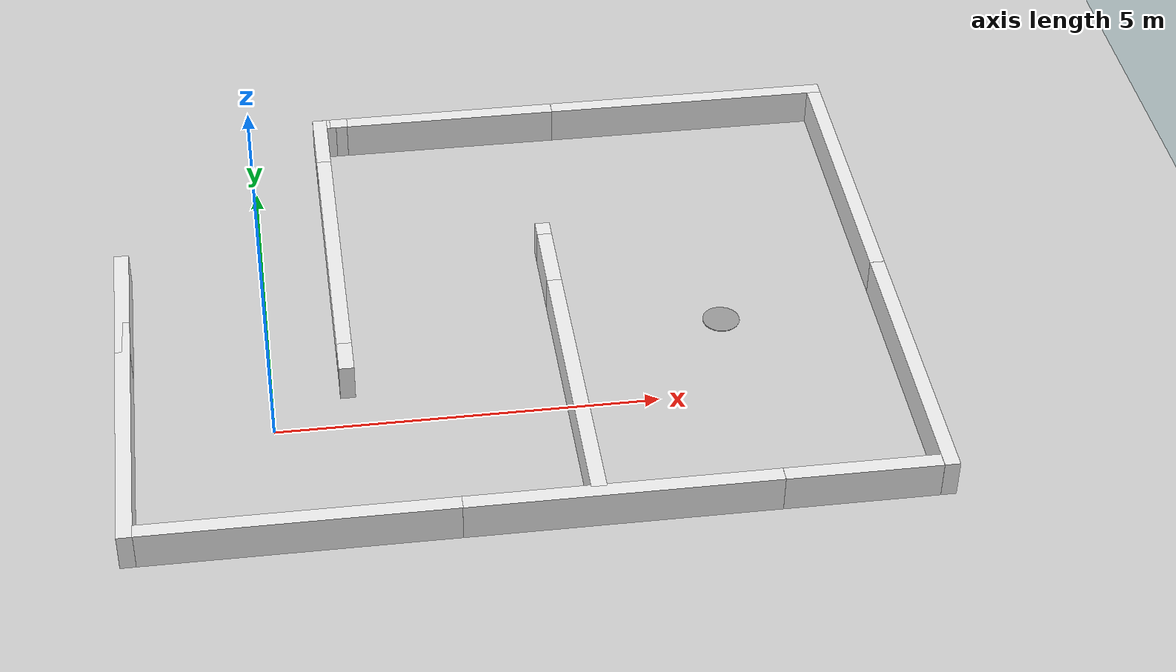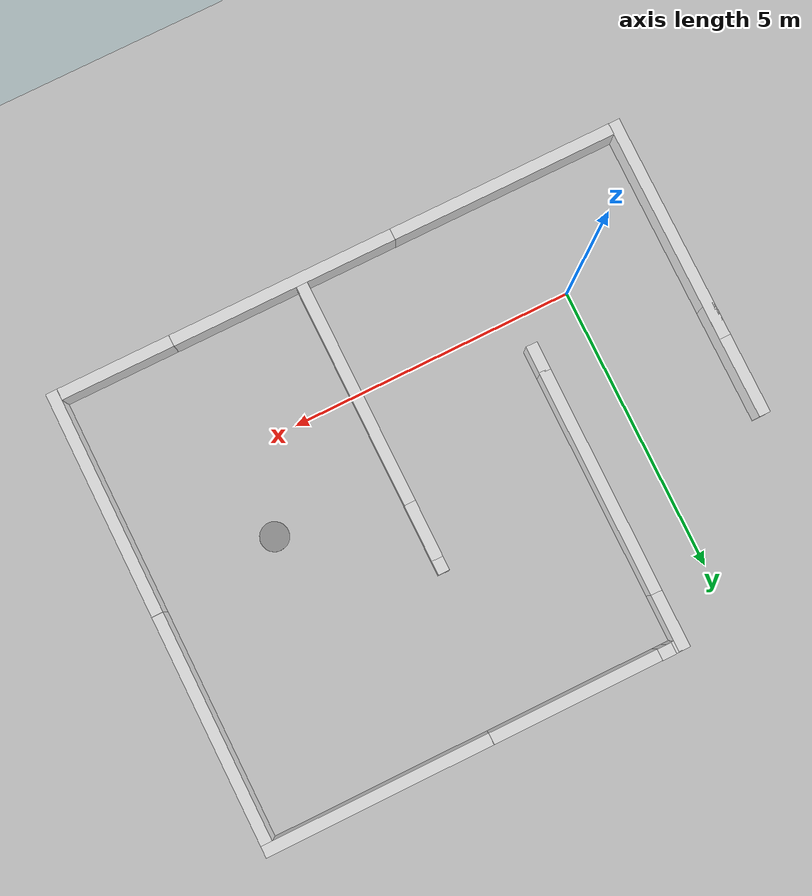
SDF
<sdf version="1.6">
 <world name="default">
  <light name="sun" type="directional">
   <pose>0 0 10 0 -0 0</pose>
   <diffuse>0.8 0.8 0.8 1</diffuse>
   <specular>0.1 0.1 0.1 1</specular>
   <attenuation>
    <range>1000</range>
    <constant>0.9</constant>
    <linear>0.01</linear>
    <quadratic>0.001</quadratic>
   </attenuation>
   <direction>-0.5 0.5 -1</direction>
  </light>
  <model name="ground_plane">
   <static>1</static>
   <link name="link">
    <collision name="collision">
     <geometry><plane><normal>0 0 1</normal><size>100 100</size></plane></geometry>
     <surface><friction><ode><mu>100</mu><mu2>50</mu2></ode></friction></surface>
    </collision>
    <visual name="visual">
     <cast_shadows>0</cast_shadows>
     <geometry><plane><normal>0 0 1</normal><size>100 100</size></plane></geometry>
     <material>
      <script><uri>file://media/materials/scripts/gazebo.material</uri><name>Gazebo/Grey</name></script>
     </material>
    </visual>
   </link>
  </model>
  <gravity>0 0 -9.8</gravity>
  <magnetic_field>6e-06 2.3e-05 -4.2e-05</magnetic_field>
  <atmosphere type="adiabatic"/>
  <physics name="default_physics" default="0" type="ode">
   <max_step_size>0.001</max_step_size>
   <real_time_factor>1</real_time_factor>
   <real_time_update_rate>1000</real_time_update_rate>
  </physics>
  <scene><ambient>0.4 0.4 0.4 1</ambient><background>0.7 0.7 0.7 1</background><shadows>1</shadows></scene>
  <spherical_coordinates>
   <surface_model>EARTH_WGS84</surface_model>
   <latitude_deg>0</latitude_deg>
   <longitude_deg>0</longitude_deg>
   <elevation>0</elevation>
   <heading_deg>0</heading_deg>
  </spherical_coordinates>
  <model name="circle_05_white">
   <link name="link">
    <pose>0 -0.014166 0 0 -0 0</pose>
    <inertial>
     <mass>1</mass>
     <inertia><ixx>0.145833</ixx><ixy>0</ixy><ixz>0</ixz><iyy>0.145833</iyy><iyz>0</iyz><izz>0.125</izz></inertia>
    </inertial>
    <visual name="ModelPreview_1::link::visual_1">
     <geometry><cylinder><radius>0.25</radius><length>0.001</length></cylinder></geometry>
     <material>
      <script><name>Gazebo/Grey</name><uri>file://media/materials/scripts/gazebo.material</uri></script>
      <ambient>1 1 1 1</ambient>
      <diffuse>1 1 1 1</diffuse>
      <specular>0.01 0.01 0.01 1</specular>
      <emissive>0 0 0 1</emissive>
      <shader type="vertex"><normal_map>__default__</normal_map></shader>
     </material>
    </visual>
    <visual name="visual">
     <geometry><cylinder><radius>0.25</radius><length>0.01</length></cylinder></geometry>
     <material>
      <script><name>Gazebo/Grey</name><uri>file://media/materials/scripts/gazebo.material</uri></script>
      <ambient>1 1 1 1</ambient>
      <diffuse>1 1 1 1</diffuse>
      <specular>0.01 0.01 0.01 1</specular>
      <emissive>0 0 0 1</emissive>
      <shader type="vertex"><normal_map>__default__</normal_map></shader>
     </material>
    </visual>
    <visual name="ModelPreview_1::link::visual_2">
     <geometry><cylinder><radius>0.25</radius><length>0.01</length></cylinder></geometry>
     <material>
      <script><name>Gazebo/Grey</name><uri>file://media/materials/scripts/gazebo.material</uri></script>
      <ambient>1 1 1 1</ambient>
      <diffuse>1 1 1 1</diffuse>
      <specular>0.01 0.01 0.01 1</specular>
      <emissive>0 0 0 1</emissive>
      <shader type="vertex"><normal_map>__default__</normal_map></shader>
     </material>
    </visual>
    <collision name="collision">
     <geometry><cylinder><radius>0.25</radius><length>1e-05</length></cylinder></geometry>
     <surface>
      <friction>
       <ode><mu>1</mu><mu2>1</mu2><fdir1>0 0 0</fdir1><slip1>0</slip1><slip2>0</slip2></ode>
       <torsional>
        <coefficient>1</coefficient>
        <patch_radius>0</patch_radius>
        <surface_radius>0</surface_radius>
        <use_patch_radius>1</use_patch_radius>
        <ode><slip>0</slip></ode>
       </torsional>
      </friction>
      <bounce><restitution_coefficient>0</restitution_coefficient><threshold>1e+06</threshold></bounce>
      <contact>
       <collide_without_contact>0</collide_without_contact>
       <collide_without_contact_bitmask>1</collide_without_contact_bitmask>
       <collide_bitmask>1</collide_bitmask>
       <ode>
        <soft_cfm>0</soft_cfm>
        <soft_erp>0.2</soft_erp>
        <kp>1e+13</kp>
        <kd>1</kd>
        <max_vel>0.01</max_vel>
        <min_depth>0</min_depth>
       </ode>
       <bullet>
        <split_impulse>1</split_impulse>
        <split_impulse_penetration_threshold>-0.01</split_impulse_penetration_threshold>
        <soft_cfm>0</soft_cfm>
        <soft_erp>0.2</soft_erp>
        <kp>1e+13</kp>
        <kd>1</kd>
       </bullet>
      </contact>
     </surface>
    </collision>
   </link>
   <static>1</static>
   <pose>6.1 1.5 0 0 -0 0</pose>
  </model>
  <model name="box_4_02_1_white">
   <link name="link">
    <pose>-0.485631 -1.32363 0 0 -0 0</pose>
    <inertial>
     <mass>1.36533</mass>
     <inertia><ixx>0.123458</ixx><ixy>0</ixy><ixz>0</ixz><iyy>2.60682</iyy><iyz>0</iyz><izz>2.50272</izz></inertia>
    </inertial>
    <visual name="visual">
     <geometry><box><size>4 0.2 1</size></box></geometry>
     <material>
      <script><name>Gazebo/White</name><uri>file://media/materials/scripts/gazebo.material</uri></script>
      <ambient>1 1 1 1</ambient>
      <diffuse>1 1 1 1</diffuse>
      <specular>0.01 0.01 0.01 1</specular>
      <emissive>0 0 0 1</emissive>
      <shader type="vertex"><normal_map>__default__</normal_map></shader>
     </material>
    </visual>
    <collision name="collision">
     <geometry><box><size>4 0.2 1</size></box></geometry>
     <surface>
      <friction>
       <ode><mu>1</mu><mu2>1</mu2><fdir1>0 0 0</fdir1><slip1>0</slip1><slip2>0</slip2></ode>
       <torsional>
        <coefficient>1</coefficient>
        <patch_radius>0</patch_radius>
        <surface_radius>0</surface_radius>
        <use_patch_radius>1</use_patch_radius>
        <ode><slip>0</slip></ode>
       </torsional>
      </friction>
      <bounce><restitution_coefficient>0</restitution_coefficient><threshold>1e+06</threshold></bounce>
      <contact>
       <collide_without_contact>0</collide_without_contact>
       <collide_without_contact_bitmask>1</collide_without_contact_bitmask>
       <collide_bitmask>1</collide_bitmask>
       <ode>
        <soft_cfm>0</soft_cfm>
        <soft_erp>0.2</soft_erp>
        <kp>1e+13</kp>
        <kd>1</kd>
        <max_vel>0.01</max_vel>
        <min_depth>0</min_depth>
       </ode>
       <bullet>
        <split_impulse>1</split_impulse>
        <split_impulse_penetration_threshold>-0.01</split_impulse_penetration_threshold>
        <soft_cfm>0</soft_cfm>
        <soft_erp>0.2</soft_erp>
        <kp>1e+13</kp>
        <kd>1</kd>
       </bullet>
      </contact>
     </surface>
    </collision>
   </link>
   <static>1</static>
   <pose>-3.21534 0.313919 0 0 -0 1.57</pose>
  </model>
  <model name="box_4_02_1_white_0">
   <link name="link">
    <pose>-0.485631 -1.32363 0 0 -0 0</pose>
    <inertial>
     <mass>1.36533</mass>
     <inertia><ixx>0.123458</ixx><ixy>0</ixy><ixz>0</ixz><iyy>2.60682</iyy><iyz>0</iyz><izz>2.50272</izz></inertia>
    </inertial>
    <visual name="visual">
     <geometry><box><size>4 0.2 1</size></box></geometry>
     <material>
      <script><name>Gazebo/White</name><uri>file://media/materials/scripts/gazebo.material</uri></script>
      <ambient>1 1 1 1</ambient>
      <diffuse>1 1 1 1</diffuse>
      <specular>0.01 0.01 0.01 1</specular>
      <emissive>0 0 0 1</emissive>
      <shader type="vertex"><normal_map>__default__</normal_map></shader>
     </material>
    </visual>
    <collision name="collision">
     <geometry><box><size>4 0.2 1</size></box></geometry>
     <surface>
      <friction>
       <ode><mu>1</mu><mu2>1</mu2><fdir1>0 0 0</fdir1><slip1>0</slip1><slip2>0</slip2></ode>
       <torsional>
        <coefficient>1</coefficient>
        <patch_radius>0</patch_radius>
        <surface_radius>0</surface_radius>
        <use_patch_radius>1</use_patch_radius>
        <ode><slip>0</slip></ode>
       </torsional>
      </friction>
      <bounce><restitution_coefficient>0</restitution_coefficient><threshold>1e+06</threshold></bounce>
      <contact>
       <collide_without_contact>0</collide_without_contact>
       <collide_without_contact_bitmask>1</collide_without_contact_bitmask>
       <collide_bitmask>1</collide_bitmask>
       <ode>
        <soft_cfm>0</soft_cfm>
        <soft_erp>0.2</soft_erp>
        <kp>1e+13</kp>
        <kd>1</kd>
        <max_vel>0.01</max_vel>
        <min_depth>0</min_depth>
       </ode>
       <bullet>
        <split_impulse>1</split_impulse>
        <split_impulse_penetration_threshold>-0.01</split_impulse_penetration_threshold>
        <soft_cfm>0</soft_cfm>
        <soft_erp>0.2</soft_erp>
        <kp>1e+13</kp>
        <kd>1</kd>
       </bullet>
      </contact>
     </surface>
    </collision>
   </link>
   <static>1</static>
   <pose>0.688014 -0.74839 0.000888 0 -0 0</pose>
  </model>
  <model name="box_4_02_1_white_1">
   <link name="link">
    <pose>-0.485631 -1.32363 0 0 -0 0</pose>
    <inertial>
     <mass>1.36533</mass>
     <inertia><ixx>0.123458</ixx><ixy>0</ixy><ixz>0</ixz><iyy>2.60682</iyy><iyz>0</iyz><izz>2.50272</izz></inertia>
    </inertial>
    <visual name="visual">
     <geometry><box><size>4 0.2 1</size></box></geometry>
     <material>
      <script><name>Gazebo/White</name><uri>file://media/materials/scripts/gazebo.material</uri></script>
      <ambient>1 1 1 1</ambient>
      <diffuse>1 1 1 1</diffuse>
      <specular>0.01 0.01 0.01 1</specular>
      <emissive>0 0 0 1</emissive>
      <shader type="vertex"><normal_map>__default__</normal_map></shader>
     </material>
    </visual>
    <collision name="collision">
     <geometry><box><size>4 0.2 1</size></box></geometry>
     <surface>
      <friction>
       <ode><mu>1</mu><mu2>1</mu2><fdir1>0 0 0</fdir1><slip1>0</slip1><slip2>0</slip2></ode>
       <torsional>
        <coefficient>1</coefficient>
        <patch_radius>0</patch_radius>
        <surface_radius>0</surface_radius>
        <use_patch_radius>1</use_patch_radius>
        <ode><slip>0</slip></ode>
       </torsional>
      </friction>
      <bounce><restitution_coefficient>0</restitution_coefficient><threshold>1e+06</threshold></bounce>
      <contact>
       <collide_without_contact>0</collide_without_contact>
       <collide_without_contact_bitmask>1</collide_without_contact_bitmask>
       <collide_bitmask>1</collide_bitmask>
       <ode>
        <soft_cfm>0</soft_cfm>
        <soft_erp>0.2</soft_erp>
        <kp>1e+13</kp>
        <kd>1</kd>
        <max_vel>0.01</max_vel>
        <min_depth>0</min_depth>
       </ode>
       <bullet>
        <split_impulse>1</split_impulse>
        <split_impulse_penetration_threshold>-0.01</split_impulse_penetration_threshold>
        <soft_cfm>0</soft_cfm>
        <soft_erp>0.2</soft_erp>
        <kp>1e+13</kp>
        <kd>1</kd>
       </bullet>
      </contact>
     </surface>
    </collision>
   </link>
   <static>1</static>
   <pose>4.68208 -0.74894 0 0 -0 0</pose>
  </model>
  <model name="box_4_02_1_white_2">
   <link name="link">
    <pose>-0.485631 -1.32363 0 0 -0 0</pose>
    <inertial>
     <mass>1.36533</mass>
     <inertia><ixx>0.123458</ixx><ixy>0</ixy><ixz>0</ixz><iyy>2.60682</iyy><iyz>0</iyz><izz>2.50272</izz></inertia>
    </inertial>
    <visual name="visual">
     <geometry><box><size>4 0.2 1</size></box></geometry>
     <material>
      <script><name>Gazebo/White</name><uri>file://media/materials/scripts/gazebo.material</uri></script>
      <ambient>1 1 1 1</ambient>
      <diffuse>1 1 1 1</diffuse>
      <specular>0.01 0.01 0.01 1</specular>
      <emissive>0 0 0 1</emissive>
      <shader type="vertex"><normal_map>__default__</normal_map></shader>
     </material>
    </visual>
    <collision name="collision">
     <geometry><box><size>4 0.2 1</size></box></geometry>
     <surface>
      <friction>
       <ode><mu>1</mu><mu2>1</mu2><fdir1>0 0 0</fdir1><slip1>0</slip1><slip2>0</slip2></ode>
       <torsional>
        <coefficient>1</coefficient>
        <patch_radius>0</patch_radius>
        <surface_radius>0</surface_radius>
        <use_patch_radius>1</use_patch_radius>
        <ode><slip>0</slip></ode>
       </torsional>
      </friction>
      <bounce><restitution_coefficient>0</restitution_coefficient><threshold>1e+06</threshold></bounce>
      <contact>
       <collide_without_contact>0</collide_without_contact>
       <collide_without_contact_bitmask>1</collide_without_contact_bitmask>
       <collide_bitmask>1</collide_bitmask>
       <ode>
        <soft_cfm>0</soft_cfm>
        <soft_erp>0.2</soft_erp>
        <kp>1e+13</kp>
        <kd>1</kd>
        <max_vel>0.01</max_vel>
        <min_depth>0</min_depth>
       </ode>
       <bullet>
        <split_impulse>1</split_impulse>
        <split_impulse_penetration_threshold>-0.01</split_impulse_penetration_threshold>
        <soft_cfm>0</soft_cfm>
        <soft_erp>0.2</soft_erp>
        <kp>1e+13</kp>
        <kd>1</kd>
       </bullet>
      </contact>
     </surface>
    </collision>
   </link>
   <static>1</static>
   <pose>-0.336911 3.51045 0 0 -0 1.57</pose>
  </model>
  <model name="box_4_02_1_white_2_clone">
   <link name="link">
    <pose>-0.485631 -1.32363 0 0 -0 0</pose>
    <inertial>
     <mass>1.36533</mass>
     <inertia><ixx>0.123458</ixx><ixy>0</ixy><ixz>0</ixz><iyy>2.60682</iyy><iyz>0</iyz><izz>2.50272</izz></inertia>
    </inertial>
    <visual name="visual">
     <geometry><box><size>4 0.2 1</size></box></geometry>
     <material>
      <script><name>Gazebo/White</name><uri>file://media/materials/scripts/gazebo.material</uri></script>
      <ambient>1 1 1 1</ambient>
      <diffuse>1 1 1 1</diffuse>
      <specular>0.01 0.01 0.01 1</specular>
      <emissive>0 0 0 1</emissive>
      <shader type="vertex"><normal_map>__default__</normal_map></shader>
     </material>
    </visual>
    <collision name="collision">
     <geometry><box><size>4 0.2 1</size></box></geometry>
     <surface>
      <friction>
       <ode><mu>1</mu><mu2>1</mu2><fdir1>0 0 0</fdir1><slip1>0</slip1><slip2>0</slip2></ode>
       <torsional>
        <coefficient>1</coefficient>
        <patch_radius>0</patch_radius>
        <surface_radius>0</surface_radius>
        <use_patch_radius>1</use_patch_radius>
        <ode><slip>0</slip></ode>
       </torsional>
      </friction>
      <bounce><restitution_coefficient>0</restitution_coefficient><threshold>1e+06</threshold></bounce>
      <contact>
       <collide_without_contact>0</collide_without_contact>
       <collide_without_contact_bitmask>1</collide_without_contact_bitmask>
       <collide_bitmask>1</collide_bitmask>
       <ode>
        <soft_cfm>0</soft_cfm>
        <soft_erp>0.2</soft_erp>
        <kp>1e+13</kp>
        <kd>1</kd>
        <max_vel>0.01</max_vel>
        <min_depth>0</min_depth>
       </ode>
       <bullet>
        <split_impulse>1</split_impulse>
        <split_impulse_penetration_threshold>-0.01</split_impulse_penetration_threshold>
        <soft_cfm>0</soft_cfm>
        <soft_erp>0.2</soft_erp>
        <kp>1e+13</kp>
        <kd>1</kd>
       </bullet>
      </contact>
     </surface>
    </collision>
   </link>
   <static>1</static>
   <pose>2.56829 0.47991 0 0 -0 1.573</pose>
  </model>
  <model name="box_2_02_1_white">
   <link name="link">
    <pose>-0.485631 -1.32363 0 0 -0 0</pose>
    <inertial>
     <mass>1.36533</mass>
     <inertia><ixx>0.123458</ixx><ixy>0</ixy><ixz>0</ixz><iyy>2.60682</iyy><iyz>0</iyz><izz>2.50272</izz></inertia>
    </inertial>
    <visual name="visual">
     <geometry><box><size>2 0.2 1</size></box></geometry>
     <material>
      <script><name>Gazebo/White</name><uri>file://media/materials/scripts/gazebo.material</uri></script>
      <ambient>1 1 1 1</ambient>
      <diffuse>1 1 1 1</diffuse>
      <specular>0.01 0.01 0.01 1</specular>
      <emissive>0 0 0 1</emissive>
      <shader type="vertex"><normal_map>__default__</normal_map></shader>
     </material>
    </visual>
    <collision name="collision">
     <geometry><box><size>2 0.2 1</size></box></geometry>
     <surface>
      <friction>
       <ode><mu>1</mu><mu2>1</mu2><fdir1>0 0 0</fdir1><slip1>0</slip1><slip2>0</slip2></ode>
       <torsional>
        <coefficient>1</coefficient>
        <patch_radius>0</patch_radius>
        <surface_radius>0</surface_radius>
        <use_patch_radius>1</use_patch_radius>
        <ode><slip>0</slip></ode>
       </torsional>
      </friction>
      <bounce><restitution_coefficient>0</restitution_coefficient><threshold>1e+06</threshold></bounce>
      <contact>
       <collide_without_contact>0</collide_without_contact>
       <collide_without_contact_bitmask>1</collide_without_contact_bitmask>
       <collide_bitmask>1</collide_bitmask>
       <ode>
        <soft_cfm>0</soft_cfm>
        <soft_erp>0.2</soft_erp>
        <kp>1e+13</kp>
        <kd>1</kd>
        <max_vel>0.01</max_vel>
        <min_depth>0</min_depth>
       </ode>
       <bullet>
        <split_impulse>1</split_impulse>
        <split_impulse_penetration_threshold>-0.01</split_impulse_penetration_threshold>
        <soft_cfm>0</soft_cfm>
        <soft_erp>0.2</soft_erp>
        <kp>1e+13</kp>
        <kd>1</kd>
       </bullet>
      </contact>
     </surface>
    </collision>
   </link>
   <static>1</static>
   <pose>7.68285 -0.74958 0 0 -0 0</pose>
  </model>
  <model name="box_4_02_1_white_2_clone_clone">
   <link name="link">
    <pose>-0.485631 -1.32363 0 0 -0 0</pose>
    <inertial>
     <mass>1.36533</mass>
     <inertia><ixx>0.123458</ixx><ixy>0</ixy><ixz>0</ixz><iyy>2.60682</iyy><iyz>0</iyz><izz>2.50272</izz></inertia>
    </inertial>
    <visual name="visual">
     <geometry><box><size>4 0.2 1</size></box></geometry>
     <material>
      <script><name>Gazebo/White</name><uri>file://media/materials/scripts/gazebo.material</uri></script>
      <ambient>1 1 1 1</ambient>
      <diffuse>1 1 1 1</diffuse>
      <specular>0.01 0.01 0.01 1</specular>
      <emissive>0 0 0 1</emissive>
      <shader type="vertex"><normal_map>__default__</normal_map></shader>
     </material>
    </visual>
    <collision name="collision">
     <geometry><box><size>4 0.2 1</size></box></geometry>
     <surface>
      <friction>
       <ode><mu>1</mu><mu2>1</mu2><fdir1>0 0 0</fdir1><slip1>0</slip1><slip2>0</slip2></ode>
       <torsional>
        <coefficient>1</coefficient>
        <patch_radius>0</patch_radius>
        <surface_radius>0</surface_radius>
        <use_patch_radius>1</use_patch_radius>
        <ode><slip>0</slip></ode>
       </torsional>
      </friction>
      <bounce><restitution_coefficient>0</restitution_coefficient><threshold>1e+06</threshold></bounce>
      <contact>
       <collide_without_contact>0</collide_without_contact>
       <collide_without_contact_bitmask>1</collide_without_contact_bitmask>
       <collide_bitmask>1</collide_bitmask>
       <ode>
        <soft_cfm>0</soft_cfm>
        <soft_erp>0.2</soft_erp>
        <kp>1e+13</kp>
        <kd>1</kd>
        <max_vel>0.01</max_vel>
        <min_depth>0</min_depth>
       </ode>
       <bullet>
        <split_impulse>1</split_impulse>
        <split_impulse_penetration_threshold>-0.01</split_impulse_penetration_threshold>
        <soft_cfm>0</soft_cfm>
        <soft_erp>0.2</soft_erp>
        <kp>1e+13</kp>
        <kd>1</kd>
       </bullet>
      </contact>
     </surface>
    </collision>
   </link>
   <static>1</static>
   <pose>6.97013 0.310211 0 0 -0 1.573</pose>
  </model>
  <model name="box_4_02_1_white_2_clone_clone_clone">
   <link name="link">
    <pose>-0.485631 -1.32363 0 0 -0 0</pose>
    <inertial>
     <mass>1.36533</mass>
     <inertia><ixx>0.123458</ixx><ixy>0</ixy><ixz>0</ixz><iyy>2.60682</iyy><iyz>0</iyz><izz>2.50272</izz></inertia>
    </inertial>
    <visual name="visual">
     <geometry><box><size>4 0.2 1</size></box></geometry>
     <material>
      <script><name>Gazebo/White</name><uri>file://media/materials/scripts/gazebo.material</uri></script>
      <ambient>1 1 1 1</ambient>
      <diffuse>1 1 1 1</diffuse>
      <specular>0.01 0.01 0.01 1</specular>
      <emissive>0 0 0 1</emissive>
      <shader type="vertex"><normal_map>__default__</normal_map></shader>
     </material>
    </visual>
    <collision name="collision">
     <geometry><box><size>4 0.2 1</size></box></geometry>
     <surface>
      <friction>
       <ode><mu>1</mu><mu2>1</mu2><fdir1>0 0 0</fdir1><slip1>0</slip1><slip2>0</slip2></ode>
       <torsional>
        <coefficient>1</coefficient>
        <patch_radius>0</patch_radius>
        <surface_radius>0</surface_radius>
        <use_patch_radius>1</use_patch_radius>
        <ode><slip>0</slip></ode>
       </torsional>
      </friction>
      <bounce><restitution_coefficient>0</restitution_coefficient><threshold>1e+06</threshold></bounce>
      <contact>
       <collide_without_contact>0</collide_without_contact>
       <collide_without_contact_bitmask>1</collide_without_contact_bitmask>
       <collide_bitmask>1</collide_bitmask>
       <ode>
        <soft_cfm>0</soft_cfm>
        <soft_erp>0.2</soft_erp>
        <kp>1e+13</kp>
        <kd>1</kd>
        <max_vel>0.01</max_vel>
        <min_depth>0</min_depth>
       </ode>
       <bullet>
        <split_impulse>1</split_impulse>
        <split_impulse_penetration_threshold>-0.01</split_impulse_penetration_threshold>
        <soft_cfm>0</soft_cfm>
        <soft_erp>0.2</soft_erp>
        <kp>1e+13</kp>
        <kd>1</kd>
       </bullet>
      </contact>
     </surface>
    </collision>
   </link>
   <static>1</static>
   <pose>6.96105 4.31176 0 0 -0 1.573</pose>
  </model>
  <model name="box_4_02_1_white_1_clone">
   <link name="link">
    <pose>-0.485631 -1.32363 0 0 -0 0</pose>
    <inertial>
     <mass>1.36533</mass>
     <inertia><ixx>0.123458</ixx><ixy>0</ixy><ixz>0</ixz><iyy>2.60682</iyy><iyz>0</iyz><izz>2.50272</izz></inertia>
    </inertial>
    <visual name="visual">
     <geometry><box><size>4 0.2 1</size></box></geometry>
     <material>
      <script><name>Gazebo/White</name><uri>file://media/materials/scripts/gazebo.material</uri></script>
      <ambient>1 1 1 1</ambient>
      <diffuse>1 1 1 1</diffuse>
      <specular>0.01 0.01 0.01 1</specular>
      <emissive>0 0 0 1</emissive>
      <shader type="vertex"><normal_map>__default__</normal_map></shader>
     </material>
    </visual>
    <collision name="collision">
     <geometry><box><size>4 0.2 1</size></box></geometry>
     <surface>
      <friction>
       <ode><mu>1</mu><mu2>1</mu2><fdir1>0 0 0</fdir1><slip1>0</slip1><slip2>0</slip2></ode>
       <torsional>
        <coefficient>1</coefficient>
        <patch_radius>0</patch_radius>
        <surface_radius>0</surface_radius>
        <use_patch_radius>1</use_patch_radius>
        <ode><slip>0</slip></ode>
       </torsional>
      </friction>
      <bounce><restitution_coefficient>0</restitution_coefficient><threshold>1e+06</threshold></bounce>
      <contact>
       <collide_without_contact>0</collide_without_contact>
       <collide_without_contact_bitmask>1</collide_without_contact_bitmask>
       <collide_bitmask>1</collide_bitmask>
       <ode>
        <soft_cfm>0</soft_cfm>
        <soft_erp>0.2</soft_erp>
        <kp>1e+13</kp>
        <kd>1</kd>
        <max_vel>0.01</max_vel>
        <min_depth>0</min_depth>
       </ode>
       <bullet>
        <split_impulse>1</split_impulse>
        <split_impulse_penetration_threshold>-0.01</split_impulse_penetration_threshold>
        <soft_cfm>0</soft_cfm>
        <soft_erp>0.2</soft_erp>
        <kp>1e+13</kp>
        <kd>1</kd>
       </bullet>
      </contact>
     </surface>
    </collision>
   </link>
   <static>1</static>
   <pose>6.867 7.25049 0 0 -0 0</pose>
  </model>
  <model name="box_3_02_1_white">
   <link name="link">
    <pose>-0.485631 -1.32363 0 0 -0 0</pose>
    <inertial>
     <mass>1.36533</mass>
     <inertia><ixx>0.123458</ixx><ixy>0</ixy><ixz>0</ixz><iyy>2.60682</iyy><iyz>0</iyz><izz>2.50272</izz></inertia>
    </inertial>
    <visual name="visual">
     <geometry><box><size>3 0.2 1</size></box></geometry>
     <material>
      <script><name>Gazebo/White</name><uri>file://media/materials/scripts/gazebo.material</uri></script>
      <ambient>1 1 1 1</ambient>
      <diffuse>1 1 1 1</diffuse>
      <specular>0.01 0.01 0.01 1</specular>
      <emissive>0 0 0 1</emissive>
      <shader type="vertex"><normal_map>__default__</normal_map></shader>
     </material>
    </visual>
    <collision name="collision">
     <geometry><box><size>3 0.2 1</size></box></geometry>
     <surface>
      <friction>
       <ode><mu>1</mu><mu2>1</mu2><fdir1>0 0 0</fdir1><slip1>0</slip1><slip2>0</slip2></ode>
       <torsional>
        <coefficient>1</coefficient>
        <patch_radius>0</patch_radius>
        <surface_radius>0</surface_radius>
        <use_patch_radius>1</use_patch_radius>
        <ode><slip>0</slip></ode>
       </torsional>
      </friction>
      <bounce><restitution_coefficient>0</restitution_coefficient><threshold>1e+06</threshold></bounce>
      <contact>
       <collide_without_contact>0</collide_without_contact>
       <collide_without_contact_bitmask>1</collide_without_contact_bitmask>
       <collide_bitmask>1</collide_bitmask>
       <ode>
        <soft_cfm>0</soft_cfm>
        <soft_erp>0.2</soft_erp>
        <kp>1e+13</kp>
        <kd>1</kd>
        <max_vel>0.01</max_vel>
        <min_depth>0</min_depth>
       </ode>
       <bullet>
        <split_impulse>1</split_impulse>
        <split_impulse_penetration_threshold>-0.01</split_impulse_penetration_threshold>
        <soft_cfm>0</soft_cfm>
        <soft_erp>0.2</soft_erp>
        <kp>1e+13</kp>
        <kd>1</kd>
       </bullet>
      </contact>
     </surface>
    </collision>
   </link>
   <static>1</static>
   <pose>3.36595 7.25049 0 0 -0 0</pose>
  </model>
  <model name="box_1_02_1_white_0">
   <link name="link">
    <pose>-0.485631 -1.32363 0 0 -0 0</pose>
    <inertial>
     <mass>1.36533</mass>
     <inertia><ixx>0.123458</ixx><ixy>0</ixy><ixz>0</ixz><iyy>2.60682</iyy><iyz>0</iyz><izz>2.50272</izz></inertia>
    </inertial>
    <visual name="visual">
     <geometry><box><size>1 0.2 1</size></box></geometry>
     <material>
      <script><name>Gazebo/White</name><uri>file://media/materials/scripts/gazebo.material</uri></script>
      <ambient>1 1 1 1</ambient>
      <diffuse>1 1 1 1</diffuse>
      <specular>0.01 0.01 0.01 1</specular>
      <emissive>0 0 0 1</emissive>
      <shader type="vertex"><normal_map>__default__</normal_map></shader>
     </material>
    </visual>
    <collision name="collision">
     <geometry><box><size>1 0.2 1</size></box></geometry>
     <surface>
      <friction>
       <ode><mu>1</mu><mu2>1</mu2><fdir1>0 0 0</fdir1><slip1>0</slip1><slip2>0</slip2></ode>
       <torsional>
        <coefficient>1</coefficient>
        <patch_radius>0</patch_radius>
        <surface_radius>0</surface_radius>
        <use_patch_radius>1</use_patch_radius>
        <ode><slip>0</slip></ode>
       </torsional>
      </friction>
      <bounce><restitution_coefficient>0</restitution_coefficient><threshold>1e+06</threshold></bounce>
      <contact>
       <collide_without_contact>0</collide_without_contact>
       <collide_without_contact_bitmask>1</collide_without_contact_bitmask>
       <collide_bitmask>1</collide_bitmask>
       <ode>
        <soft_cfm>0</soft_cfm>
        <soft_erp>0.2</soft_erp>
        <kp>1e+13</kp>
        <kd>1</kd>
        <max_vel>0.01</max_vel>
        <min_depth>0</min_depth>
       </ode>
       <bullet>
        <split_impulse>1</split_impulse>
        <split_impulse_penetration_threshold>-0.01</split_impulse_penetration_threshold>
        <soft_cfm>0</soft_cfm>
        <soft_erp>0.2</soft_erp>
        <kp>1e+13</kp>
        <kd>1</kd>
       </bullet>
      </contact>
     </surface>
    </collision>
   </link>
   <static>1</static>
   <pose>2.31199 5.03452 0 0 0 -1.573</pose>
  </model>
  <model name="box_025_02_1_white_0">
   <link name="link">
    <pose>-0.485631 -1.32363 0 0 -0 0</pose>
    <inertial>
     <mass>1.36533</mass>
     <inertia><ixx>0.123458</ixx><ixy>0</ixy><ixz>0</ixz><iyy>2.60682</iyy><iyz>0</iyz><izz>2.50272</izz></inertia>
    </inertial>
    <visual name="visual">
     <geometry><box><size>0.25 0.2 1</size></box></geometry>
     <material>
      <script><name>Gazebo/White</name><uri>file://media/materials/scripts/gazebo.material</uri></script>
      <ambient>1 1 1 1</ambient>
      <diffuse>1 1 1 1</diffuse>
      <specular>0.01 0.01 0.01 1</specular>
      <emissive>0 0 0 1</emissive>
      <shader type="vertex"><normal_map>__default__</normal_map></shader>
     </material>
    </visual>
    <collision name="collision">
     <geometry><box><size>0.25 0.2 1</size></box></geometry>
     <surface>
      <friction>
       <ode><mu>1</mu><mu2>1</mu2><fdir1>0 0 0</fdir1><slip1>0</slip1><slip2>0</slip2></ode>
       <torsional>
        <coefficient>1</coefficient>
        <patch_radius>0</patch_radius>
        <surface_radius>0</surface_radius>
        <use_patch_radius>1</use_patch_radius>
        <ode><slip>0</slip></ode>
       </torsional>
      </friction>
      <bounce><restitution_coefficient>0</restitution_coefficient><threshold>1e+06</threshold></bounce>
      <contact>
       <collide_without_contact>0</collide_without_contact>
       <collide_without_contact_bitmask>1</collide_without_contact_bitmask>
       <collide_bitmask>1</collide_bitmask>
       <ode>
        <soft_cfm>0</soft_cfm>
        <soft_erp>0.2</soft_erp>
        <kp>1e+13</kp>
        <kd>1</kd>
        <max_vel>0.01</max_vel>
        <min_depth>0</min_depth>
       </ode>
       <bullet>
        <split_impulse>1</split_impulse>
        <split_impulse_penetration_threshold>-0.01</split_impulse_penetration_threshold>
        <soft_cfm>0</soft_cfm>
        <soft_erp>0.2</soft_erp>
        <kp>1e+13</kp>
        <kd>1</kd>
       </bullet>
      </contact>
     </surface>
    </collision>
   </link>
   <static>1</static>
   <pose>1.5825 7.24997 0 0 -0 0</pose>
  </model>
  <model name="box_025_02_1_white_1">
   <link name="link">
    <pose>-0.485631 -1.32363 0 0 -0 0</pose>
    <inertial>
     <mass>1.36533</mass>
     <inertia><ixx>0.123458</ixx><ixy>0</ixy><ixz>0</ixz><iyy>2.60682</iyy><iyz>0</iyz><izz>2.50272</izz></inertia>
    </inertial>
    <visual name="visual">
     <geometry><box><size>0.25 0.2 1</size></box></geometry>
     <material>
      <script><name>Gazebo/White</name><uri>file://media/materials/scripts/gazebo.material</uri></script>
      <ambient>1 1 1 1</ambient>
      <diffuse>1 1 1 1</diffuse>
      <specular>0.01 0.01 0.01 1</specular>
      <emissive>0 0 0 1</emissive>
      <shader type="vertex"><normal_map>__default__</normal_map></shader>
     </material>
    </visual>
    <collision name="collision">
     <geometry><box><size>0.25 0.2 1</size></box></geometry>
     <surface>
      <friction>
       <ode><mu>1</mu><mu2>1</mu2><fdir1>0 0 0</fdir1><slip1>0</slip1><slip2>0</slip2></ode>
       <torsional>
        <coefficient>1</coefficient>
        <patch_radius>0</patch_radius>
        <surface_radius>0</surface_radius>
        <use_patch_radius>1</use_patch_radius>
        <ode><slip>0</slip></ode>
       </torsional>
      </friction>
      <bounce><restitution_coefficient>0</restitution_coefficient><threshold>1e+06</threshold></bounce>
      <contact>
       <collide_without_contact>0</collide_without_contact>
       <collide_without_contact_bitmask>1</collide_without_contact_bitmask>
       <collide_bitmask>1</collide_bitmask>
       <ode>
        <soft_cfm>0</soft_cfm>
        <soft_erp>0.2</soft_erp>
        <kp>1e+13</kp>
        <kd>1</kd>
        <max_vel>0.01</max_vel>
        <min_depth>0</min_depth>
       </ode>
       <bullet>
        <split_impulse>1</split_impulse>
        <split_impulse_penetration_threshold>-0.01</split_impulse_penetration_threshold>
        <soft_cfm>0</soft_cfm>
        <soft_erp>0.2</soft_erp>
        <kp>1e+13</kp>
        <kd>1</kd>
       </bullet>
      </contact>
     </surface>
    </collision>
   </link>
   <static>1</static>
   <pose>1.74814 7.25102 0 0 -0 0</pose>
  </model>
  <model name="box_1_02_1_white_1">
   <link name="link">
    <pose>-0.485631 -1.32363 0 0 -0 0</pose>
    <inertial>
     <mass>1.36533</mass>
     <inertia><ixx>0.123458</ixx><ixy>0</ixy><ixz>0</ixz><iyy>2.60682</iyy><iyz>0</iyz><izz>2.50272</izz></inertia>
    </inertial>
    <visual name="visual">
     <geometry><box><size>1 0.2 1</size></box></geometry>
     <material>
      <script><name>Gazebo/White</name><uri>file://media/materials/scripts/gazebo.material</uri></script>
      <ambient>1 1 1 1</ambient>
      <diffuse>1 1 1 1</diffuse>
      <specular>0.01 0.01 0.01 1</specular>
      <emissive>0 0 0 1</emissive>
      <shader type="vertex"><normal_map>__default__</normal_map></shader>
     </material>
    </visual>
    <collision name="collision">
     <geometry><box><size>1 0.2 1</size></box></geometry>
     <surface>
      <friction>
       <ode><mu>1</mu><mu2>1</mu2><fdir1>0 0 0</fdir1><slip1>0</slip1><slip2>0</slip2></ode>
       <torsional>
        <coefficient>1</coefficient>
        <patch_radius>0</patch_radius>
        <surface_radius>0</surface_radius>
        <use_patch_radius>1</use_patch_radius>
        <ode><slip>0</slip></ode>
       </torsional>
      </friction>
      <bounce><restitution_coefficient>0</restitution_coefficient><threshold>1e+06</threshold></bounce>
      <contact>
       <collide_without_contact>0</collide_without_contact>
       <collide_without_contact_bitmask>1</collide_without_contact_bitmask>
       <collide_bitmask>1</collide_bitmask>
       <ode>
        <soft_cfm>0</soft_cfm>
        <soft_erp>0.2</soft_erp>
        <kp>1e+13</kp>
        <kd>1</kd>
        <max_vel>0.01</max_vel>
        <min_depth>0</min_depth>
       </ode>
       <bullet>
        <split_impulse>1</split_impulse>
        <split_impulse_penetration_threshold>-0.01</split_impulse_penetration_threshold>
        <soft_cfm>0</soft_cfm>
        <soft_erp>0.2</soft_erp>
        <kp>1e+13</kp>
        <kd>1</kd>
       </bullet>
      </contact>
     </surface>
    </collision>
   </link>
   <static>1</static>
   <pose>2.56559 2.9836 0 0 -0 1.57</pose>
  </model>
  <model name="box_2_02_1_white_0">
   <link name="link">
    <pose>-0.485631 -1.32363 0 0 -0 0</pose>
    <inertial>
     <mass>1.36533</mass>
     <inertia><ixx>0.123458</ixx><ixy>0</ixy><ixz>0</ixz><iyy>2.60682</iyy><iyz>0</iyz><izz>2.50272</izz></inertia>
    </inertial>
    <visual name="visual">
     <geometry><box><size>2 0.2 1</size></box></geometry>
     <material>
      <script><name>Gazebo/White</name><uri>file://media/materials/scripts/gazebo.material</uri></script>
      <ambient>1 1 1 1</ambient>
      <diffuse>1 1 1 1</diffuse>
      <specular>0.01 0.01 0.01 1</specular>
      <emissive>0 0 0 1</emissive>
      <shader type="vertex"><normal_map>__default__</normal_map></shader>
     </material>
    </visual>
    <collision name="collision">
     <geometry><box><size>2 0.2 1</size></box></geometry>
     <surface>
      <friction>
       <ode><mu>1</mu><mu2>1</mu2><fdir1>0 0 0</fdir1><slip1>0</slip1><slip2>0</slip2></ode>
       <torsional>
        <coefficient>1</coefficient>
        <patch_radius>0</patch_radius>
        <surface_radius>0</surface_radius>
        <use_patch_radius>1</use_patch_radius>
        <ode><slip>0</slip></ode>
       </torsional>
      </friction>
      <bounce><restitution_coefficient>0</restitution_coefficient><threshold>1e+06</threshold></bounce>
      <contact>
       <collide_without_contact>0</collide_without_contact>
       <collide_without_contact_bitmask>1</collide_without_contact_bitmask>
       <collide_bitmask>1</collide_bitmask>
       <ode>
        <soft_cfm>0</soft_cfm>
        <soft_erp>0.2</soft_erp>
        <kp>1e+13</kp>
        <kd>1</kd>
        <max_vel>0.01</max_vel>
        <min_depth>0</min_depth>
       </ode>
       <bullet>
        <split_impulse>1</split_impulse>
        <split_impulse_penetration_threshold>-0.01</split_impulse_penetration_threshold>
        <soft_cfm>0</soft_cfm>
        <soft_erp>0.2</soft_erp>
        <kp>1e+13</kp>
        <kd>1</kd>
       </bullet>
      </contact>
     </surface>
    </collision>
   </link>
   <static>1</static>
   <pose>-3.2136 2.71939 0 0 -0 1.571</pose>
  </model>
  <model name="box_05_02_1_white">
   <link name="link">
    <pose>-0.485631 -1.32363 0 0 -0 0</pose>
    <inertial>
     <mass>1.36533</mass>
     <inertia><ixx>0.123458</ixx><ixy>0</ixy><ixz>0</ixz><iyy>2.60682</iyy><iyz>0</iyz><izz>2.50272</izz></inertia>
    </inertial>
    <visual name="visual">
     <geometry><box><size>0.5 0.2 1</size></box></geometry>
     <material>
      <script><name>Gazebo/White</name><uri>file://media/materials/scripts/gazebo.material</uri></script>
      <ambient>1 1 1 1</ambient>
      <diffuse>1 1 1 1</diffuse>
      <specular>0.01 0.01 0.01 1</specular>
      <emissive>0 0 0 1</emissive>
      <shader type="vertex"><normal_map>__default__</normal_map></shader>
     </material>
    </visual>
    <collision name="collision">
     <geometry><box><size>0.5 0.2 1</size></box></geometry>
     <surface>
      <friction>
       <ode><mu>1</mu><mu2>1</mu2><fdir1>0 0 0</fdir1><slip1>0</slip1><slip2>0</slip2></ode>
       <torsional>
        <coefficient>1</coefficient>
        <patch_radius>0</patch_radius>
        <surface_radius>0</surface_radius>
        <use_patch_radius>1</use_patch_radius>
        <ode><slip>0</slip></ode>
       </torsional>
      </friction>
      <bounce><restitution_coefficient>0</restitution_coefficient><threshold>1e+06</threshold></bounce>
      <contact>
       <collide_without_contact>0</collide_without_contact>
       <collide_without_contact_bitmask>1</collide_without_contact_bitmask>
       <collide_bitmask>1</collide_bitmask>
       <ode>
        <soft_cfm>0</soft_cfm>
        <soft_erp>0.2</soft_erp>
        <kp>1e+13</kp>
        <kd>1</kd>
        <max_vel>0.01</max_vel>
        <min_depth>0</min_depth>
       </ode>
       <bullet>
        <split_impulse>1</split_impulse>
        <split_impulse_penetration_threshold>-0.01</split_impulse_penetration_threshold>
        <soft_cfm>0</soft_cfm>
        <soft_erp>0.2</soft_erp>
        <kp>1e+13</kp>
        <kd>1</kd>
       </bullet>
      </contact>
     </surface>
    </collision>
   </link>
   <static>1</static>
   <pose>-0.336803 1.2972 0 0 -0 1.56341</pose>
  </model>
  <model name="box_025_02_1_white">
   <link name="link">
    <pose>-0.485631 -1.32363 0 0 -0 0</pose>
    <inertial>
     <mass>1.36533</mass>
     <inertia><ixx>0.123458</ixx><ixy>0</ixy><ixz>0</ixz><iyy>2.60682</iyy><iyz>0</iyz><izz>2.50272</izz></inertia>
    </inertial>
    <visual name="visual">
     <geometry><box><size>0.25 0.2 1</size></box></geometry>
     <material>
      <script><name>Gazebo/White</name><uri>file://media/materials/scripts/gazebo.material</uri></script>
      <ambient>1 1 1 1</ambient>
      <diffuse>1 1 1 1</diffuse>
      <specular>0.01 0.01 0.01 1</specular>
      <emissive>0 0 0 1</emissive>
      <shader type="vertex"><normal_map>__default__</normal_map></shader>
     </material>
    </visual>
    <collision name="collision">
     <geometry><box><size>0.25 0.2 1</size></box></geometry>
     <surface>
      <friction>
       <ode><mu>1</mu><mu2>1</mu2><fdir1>0 0 0</fdir1><slip1>0</slip1><slip2>0</slip2></ode>
       <torsional>
        <coefficient>1</coefficient>
        <patch_radius>0</patch_radius>
        <surface_radius>0</surface_radius>
        <use_patch_radius>1</use_patch_radius>
        <ode><slip>0</slip></ode>
       </torsional>
      </friction>
      <bounce><restitution_coefficient>0</restitution_coefficient><threshold>1e+06</threshold></bounce>
      <contact>
       <collide_without_contact>0</collide_without_contact>
       <collide_without_contact_bitmask>1</collide_without_contact_bitmask>
       <collide_bitmask>1</collide_bitmask>
       <ode>
        <soft_cfm>0</soft_cfm>
        <soft_erp>0.2</soft_erp>
        <kp>1e+13</kp>
        <kd>1</kd>
        <max_vel>0.01</max_vel>
        <min_depth>0</min_depth>
       </ode>
       <bullet>
        <split_impulse>1</split_impulse>
        <split_impulse_penetration_threshold>-0.01</split_impulse_penetration_threshold>
        <soft_cfm>0</soft_cfm>
        <soft_erp>0.2</soft_erp>
        <kp>1e+13</kp>
        <kd>1</kd>
       </bullet>
      </contact>
     </surface>
    </collision>
   </link>
   <static>1</static>
   <pose>2.56767 3.60605 0 0 -0 1.56744</pose>
  </model>
 </world>
</sdf>
